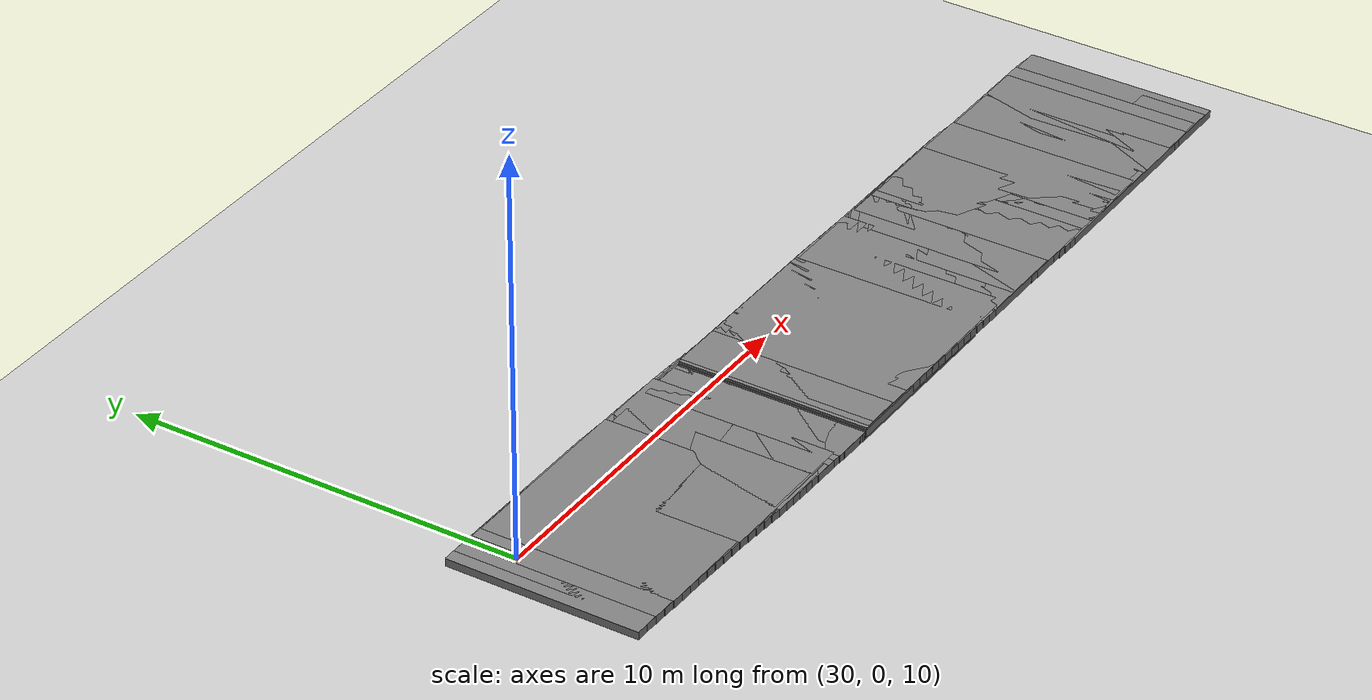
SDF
<sdf version="1.6">
 <world name="default">
  <include><uri>model://sun</uri></include>
  <include><uri>model://ground_plane</uri></include>
  <model name="road_segment_567">
   <static>true</static>
   <link name="link">
    <visual name="visual">
     <geometry><box><size>5.0 5.0 0.2</size></box></geometry>
     <material><ambient>0.5 0.5 0.5 1</ambient><diffuse>0.5 0.5 0.5 1</diffuse></material>
     <pose>54.498414594915474 0.13177249325932455 7.851056789716186 0 0 0</pose>
    </visual>
    <collision name="collision">
     <geometry><box><size>5.0 5.0 0.2</size></box></geometry>
     <pose>54.498414594915474 0.13177249325932455 7.851056789716186 0 0 0</pose>
    </collision>
   </link>
  </model>
  <model name="road_segment_568">
   <static>true</static>
   <link name="link">
    <visual name="visual">
     <geometry><box><size>5.0 5.0 0.2</size></box></geometry>
     <material><ambient>0.5 0.5 0.5 1</ambient><diffuse>0.5 0.5 0.5 1</diffuse></material>
     <pose>54.25348099810866 0.14872926371178607 7.851056789716186 0 0 0</pose>
    </visual>
    <collision name="collision">
     <geometry><box><size>5.0 5.0 0.2</size></box></geometry>
     <pose>54.25348099810866 0.14872926371178607 7.851056789716186 0 0 0</pose>
    </collision>
   </link>
  </model>
  <model name="road_segment_569">
   <static>true</static>
   <link name="link">
    <visual name="visual">
     <geometry><box><size>5.0 5.0 0.2</size></box></geometry>
     <material><ambient>0.5 0.5 0.5 1</ambient><diffuse>0.5 0.5 0.5 1</diffuse></material>
     <pose>54.00567529065241 0.17018059982385353 7.851056789716186 0 0 0</pose>
    </visual>
    <collision name="collision">
     <geometry><box><size>5.0 5.0 0.2</size></box></geometry>
     <pose>54.00567529065241 0.17018059982385353 7.851056789716186 0 0 0</pose>
    </collision>
   </link>
  </model>
  <model name="road_segment_570">
   <static>true</static>
   <link name="link">
    <visual name="visual">
     <geometry><box><size>5.0 5.0 0.2</size></box></geometry>
     <material><ambient>0.5 0.5 0.5 1</ambient><diffuse>0.5 0.5 0.5 1</diffuse></material>
     <pose>53.761545884847024 0.17590095611822743 7.851056789716186 0 0 0</pose>
    </visual>
    <collision name="collision">
     <geometry><box><size>5.0 5.0 0.2</size></box></geometry>
     <pose>53.761545884847024 0.17590095611822743 7.851056789716186 0 0 0</pose>
    </collision>
   </link>
  </model>
  <model name="road_segment_571">
   <static>true</static>
   <link name="link">
    <visual name="visual">
     <geometry><box><size>5.0 5.0 0.2</size></box></geometry>
     <material><ambient>0.5 0.5 0.5 1</ambient><diffuse>0.5 0.5 0.5 1</diffuse></material>
     <pose>53.525573273295805 0.16609463103645505 7.851056789716186 0 0 0</pose>
    </visual>
    <collision name="collision">
     <geometry><box><size>5.0 5.0 0.2</size></box></geometry>
     <pose>53.525573273295805 0.16609463103645505 7.851056789716186 0 0 0</pose>
    </collision>
   </link>
  </model>
  <model name="road_segment_572">
   <static>true</static>
   <link name="link">
    <visual name="visual">
     <geometry><box><size>5.0 5.0 0.2</size></box></geometry>
     <material><ambient>0.5 0.5 0.5 1</ambient><diffuse>0.5 0.5 0.5 1</diffuse></material>
     <pose>53.301778410924285 0.15179374029870585 7.851056789716186 0 0 0</pose>
    </visual>
    <collision name="collision">
     <geometry><box><size>5.0 5.0 0.2</size></box></geometry>
     <pose>53.301778410924285 0.15179374029870585 7.851056789716186 0 0 0</pose>
    </collision>
   </link>
  </model>
  <model name="road_segment_573">
   <static>true</static>
   <link name="link">
    <visual name="visual">
     <geometry><box><size>5.0 5.0 0.2</size></box></geometry>
     <material><ambient>0.5 0.5 0.5 1</ambient><diffuse>0.5 0.5 0.5 1</diffuse></material>
     <pose>53.08303846330227 0.1374928495609566 7.851056789716186 0 0 0</pose>
    </visual>
    <collision name="collision">
     <geometry><box><size>5.0 5.0 0.2</size></box></geometry>
     <pose>53.08303846330227 0.1374928495609566 7.851056789716186 0 0 0</pose>
    </collision>
   </link>
  </model>
  <model name="road_segment_574">
   <static>true</static>
   <link name="link">
    <visual name="visual">
     <geometry><box><size>5.0 5.0 0.2</size></box></geometry>
     <material><ambient>0.5 0.5 0.5 1</ambient><diffuse>0.5 0.5 0.5 1</diffuse></material>
     <pose>52.86383897798616 0.12911661355187046 7.851056789716186 0 0 0</pose>
    </visual>
    <collision name="collision">
     <geometry><box><size>5.0 5.0 0.2</size></box></geometry>
     <pose>52.86383897798616 0.12911661355187046 7.851056789716186 0 0 0</pose>
    </collision>
   </link>
  </model>
  <model name="road_segment_575">
   <static>true</static>
   <link name="link">
    <visual name="visual">
     <geometry><box><size>5.0 5.0 0.2</size></box></geometry>
     <material><ambient>0.5 0.5 0.5 1</ambient><diffuse>0.5 0.5 0.5 1</diffuse></material>
     <pose>52.64360553284605 0.12891231511032308 7.851056789716186 0 0 0</pose>
    </visual>
    <collision name="collision">
     <geometry><box><size>5.0 5.0 0.2</size></box></geometry>
     <pose>52.64360553284605 0.12891231511032308 7.851056789716186 0 0 0</pose>
    </collision>
   </link>
  </model>
  <model name="road_segment_576">
   <static>true</static>
   <link name="link">
    <visual name="visual">
     <geometry><box><size>5.0 5.0 0.2</size></box></geometry>
     <material><ambient>0.5 0.5 0.5 1</ambient><diffuse>0.5 0.5 0.5 1</diffuse></material>
     <pose>52.41808740408487 0.12993380730717272 7.851056789716186 0 0 0</pose>
    </visual>
    <collision name="collision">
     <geometry><box><size>5.0 5.0 0.2</size></box></geometry>
     <pose>52.41808740408487 0.12993380730717272 7.851056789716186 0 0 0</pose>
    </collision>
   </link>
  </model>
  <model name="road_segment_577">
   <static>true</static>
   <link name="link">
    <visual name="visual">
     <geometry><box><size>5.0 5.0 0.2</size></box></geometry>
     <material><ambient>0.5 0.5 0.5 1</ambient><diffuse>0.5 0.5 0.5 1</diffuse></material>
     <pose>52.18475713432786 0.13422407452886037 7.851056789716186 0 0 0</pose>
    </visual>
    <collision name="collision">
     <geometry><box><size>5.0 5.0 0.2</size></box></geometry>
     <pose>52.18475713432786 0.13422407452886037 7.851056789716186 0 0 0</pose>
    </collision>
   </link>
  </model>
  <model name="road_segment_578">
   <static>true</static>
   <link name="link">
    <visual name="visual">
     <geometry><box><size>5.0 5.0 0.2</size></box></geometry>
     <material><ambient>0.5 0.5 0.5 1</ambient><diffuse>0.5 0.5 0.5 1</diffuse></material>
     <pose>51.944074261285465 0.14975075590500658 7.851056789716186 0 0 0</pose>
    </visual>
    <collision name="collision">
     <geometry><box><size>5.0 5.0 0.2</size></box></geometry>
     <pose>51.944074261285465 0.14975075590500658 7.851056789716186 0 0 0</pose>
    </collision>
   </link>
  </model>
  <model name="road_segment_579">
   <static>true</static>
   <link name="link">
    <visual name="visual">
     <geometry><box><size>5.0 5.0 0.2</size></box></geometry>
     <material><ambient>0.5 0.5 0.5 1</ambient><diffuse>0.5 0.5 0.5 1</diffuse></material>
     <pose>51.6968429759591 0.1669118247953864 7.851056789716186 0 0 0</pose>
    </visual>
    <collision name="collision">
     <geometry><box><size>5.0 5.0 0.2</size></box></geometry>
     <pose>51.6968429759591 0.1669118247953864 7.851056789716186 0 0 0</pose>
    </collision>
   </link>
  </model>
  <model name="road_segment_580">
   <static>true</static>
   <link name="link">
    <visual name="visual">
     <geometry><box><size>5.0 5.0 0.2</size></box></geometry>
     <material><ambient>0.5 0.5 0.5 1</ambient><diffuse>0.5 0.5 0.5 1</diffuse></material>
     <pose>51.44156978079802 0.17630955299769308 7.851056789716186 0 0 0</pose>
    </visual>
    <collision name="collision">
     <geometry><box><size>5.0 5.0 0.2</size></box></geometry>
     <pose>51.44156978079802 0.17630955299769308 7.851056789716186 0 0 0</pose>
    </collision>
   </link>
  </model>
  <model name="road_segment_581">
   <static>true</static>
   <link name="link">
    <visual name="visual">
     <geometry><box><size>5.0 5.0 0.2</size></box></geometry>
     <material><ambient>0.5 0.5 0.5 1</ambient><diffuse>0.5 0.5 0.5 1</diffuse></material>
     <pose>51.17802490694699 0.17814823894984494 7.851056789716186 0 0 0</pose>
    </visual>
    <collision name="collision">
     <geometry><box><size>5.0 5.0 0.2</size></box></geometry>
     <pose>51.17802490694699 0.17814823894984494 7.851056789716186 0 0 0</pose>
    </collision>
   </link>
  </model>
  <model name="road_segment_582">
   <static>true</static>
   <link name="link">
    <visual name="visual">
     <geometry><box><size>5.0 5.0 0.2</size></box></geometry>
     <material><ambient>0.5 0.5 0.5 1</ambient><diffuse>0.5 0.5 0.5 1</diffuse></material>
     <pose>50.90976977162111 0.17406227016607556 7.851056789716186 0 0 0</pose>
    </visual>
    <collision name="collision">
     <geometry><box><size>5.0 5.0 0.2</size></box></geometry>
     <pose>50.90976977162111 0.17406227016607556 7.851056789716186 0 0 0</pose>
    </collision>
   </link>
  </model>
  <model name="road_segment_583">
   <static>true</static>
   <link name="link">
    <visual name="visual">
     <geometry><box><size>5.0 5.0 0.2</size></box></geometry>
     <material><ambient>0.5 0.5 0.5 1</ambient><diffuse>0.5 0.5 0.5 1</diffuse></material>
     <pose>50.638068103499585 0.1777396420703793 7.851056789716186 0 0 0</pose>
    </visual>
    <collision name="collision">
     <geometry><box><size>5.0 5.0 0.2</size></box></geometry>
     <pose>50.638068103499585 0.1777396420703793 7.851056789716186 0 0 0</pose>
    </collision>
   </link>
  </model>
  <model name="road_segment_584">
   <static>true</static>
   <link name="link">
    <visual name="visual">
     <geometry><box><size>5.0 5.0 0.2</size></box></geometry>
     <material><ambient>0.5 0.5 0.5 1</ambient><diffuse>0.5 0.5 0.5 1</diffuse></material>
     <pose>50.363034787018194 0.19755659066821318 7.851056789716186 0 0 0</pose>
    </visual>
    <collision name="collision">
     <geometry><box><size>5.0 5.0 0.2</size></box></geometry>
     <pose>50.363034787018194 0.19755659066821318 7.851056789716186 0 0 0</pose>
    </collision>
   </link>
  </model>
  <model name="road_segment_585">
   <static>true</static>
   <link name="link">
    <visual name="visual">
     <geometry><box><size>5.0 5.0 0.2</size></box></geometry>
     <material><ambient>0.5 0.5 0.5 1</ambient><diffuse>0.5 0.5 0.5 1</diffuse></material>
     <pose>50.084325168885954 0.22186810492928213 7.851056789716186 0 0 0</pose>
    </visual>
    <collision name="collision">
     <geometry><box><size>5.0 5.0 0.2</size></box></geometry>
     <pose>50.084325168885954 0.22186810492928213 7.851056789716186 0 0 0</pose>
    </collision>
   </link>
  </model>
  <model name="road_segment_586">
   <static>true</static>
   <link name="link">
    <visual name="visual">
     <geometry><box><size>5.0 5.0 0.2</size></box></geometry>
     <material><ambient>0.5 0.5 0.5 1</ambient><diffuse>0.5 0.5 0.5 1</diffuse></material>
     <pose>49.80274344010428 0.23371741440112462 7.851056789716186 0 0 0</pose>
    </visual>
    <collision name="collision">
     <geometry><box><size>5.0 5.0 0.2</size></box></geometry>
     <pose>49.80274344010428 0.23371741440112462 7.851056789716186 0 0 0</pose>
    </collision>
   </link>
  </model>
  <model name="road_segment_587">
   <static>true</static>
   <link name="link">
    <visual name="visual">
     <geometry><box><size>5.0 5.0 0.2</size></box></geometry>
     <material><ambient>0.5 0.5 0.5 1</ambient><diffuse>0.5 0.5 0.5 1</diffuse></material>
     <pose>49.51920867607773 0.22064231429451422 7.851056789716186 0 0 0</pose>
    </visual>
    <collision name="collision">
     <geometry><box><size>5.0 5.0 0.2</size></box></geometry>
     <pose>49.51920867607773 0.22064231429451422 7.851056789716186 0 0 0</pose>
    </collision>
   </link>
  </model>
  <model name="road_segment_588">
   <static>true</static>
   <link name="link">
    <visual name="visual">
     <geometry><box><size>5.0 5.0 0.2</size></box></geometry>
     <material><ambient>0.5 0.5 0.5 1</ambient><diffuse>0.5 0.5 0.5 1</diffuse></material>
     <pose>49.23452506777509 0.19510500939867736 7.851056789716186 0 0 0</pose>
    </visual>
    <collision name="collision">
     <geometry><box><size>5.0 5.0 0.2</size></box></geometry>
     <pose>49.23452506777509 0.19510500939867736 7.851056789716186 0 0 0</pose>
    </collision>
   </link>
  </model>
  <model name="road_segment_589">
   <static>true</static>
   <link name="link">
    <visual name="visual">
     <geometry><box><size>5.0 5.0 0.2</size></box></geometry>
     <material><ambient>0.5 0.5 0.5 1</ambient><diffuse>0.5 0.5 0.5 1</diffuse></material>
     <pose>48.94915215292312 0.18345999836838223 7.851056789716186 0 0 0</pose>
    </visual>
    <collision name="collision">
     <geometry><box><size>5.0 5.0 0.2</size></box></geometry>
     <pose>48.94915215292312 0.18345999836838223 7.851056789716186 0 0 0</pose>
    </collision>
   </link>
  </model>
  <model name="road_segment_590">
   <static>true</static>
   <link name="link">
    <visual name="visual">
     <geometry><box><size>5.0 5.0 0.2</size></box></geometry>
     <material><ambient>0.5 0.5 0.5 1</ambient><diffuse>0.5 0.5 0.5 1</diffuse></material>
     <pose>48.6644685446368 0.186524474955302 7.851056789716186 0 0 0</pose>
    </visual>
    <collision name="collision">
     <geometry><box><size>5.0 5.0 0.2</size></box></geometry>
     <pose>48.6644685446368 0.186524474955302 7.851056789716186 0 0 0</pose>
    </collision>
   </link>
  </model>
  <model name="road_segment_591">
   <static>true</static>
   <link name="link">
    <visual name="visual">
     <geometry><box><size>5.0 5.0 0.2</size></box></geometry>
     <material><ambient>0.5 0.5 0.5 1</ambient><diffuse>0.5 0.5 0.5 1</diffuse></material>
     <pose>48.38185285603113 0.19367492032599115 7.851056789716186 0 0 0</pose>
    </visual>
    <collision name="collision">
     <geometry><box><size>5.0 5.0 0.2</size></box></geometry>
     <pose>48.38185285603113 0.19367492032599115 7.851056789716186 0 0 0</pose>
    </collision>
   </link>
  </model>
  <model name="road_segment_592">
   <static>true</static>
   <link name="link">
    <visual name="visual">
     <geometry><box><size>5.0 5.0 0.2</size></box></geometry>
     <material><ambient>0.5 0.5 0.5 1</ambient><diffuse>0.5 0.5 0.5 1</diffuse></material>
     <pose>48.09946693626435 0.20041676882084372 7.851056789716186 0 0 0</pose>
    </visual>
    <collision name="collision">
     <geometry><box><size>5.0 5.0 0.2</size></box></geometry>
     <pose>48.09946693626435 0.20041676882084372 7.851056789716186 0 0 0</pose>
    </collision>
   </link>
  </model>
  <model name="road_segment_593">
   <static>true</static>
   <link name="link">
    <visual name="visual">
     <geometry><box><size>5.0 5.0 0.2</size></box></geometry>
     <material><ambient>0.5 0.5 0.5 1</ambient><diffuse>0.5 0.5 0.5 1</diffuse></material>
     <pose>47.8167363632229 0.20797581106736948 7.851056789716186 0 0 0</pose>
    </visual>
    <collision name="collision">
     <geometry><box><size>5.0 5.0 0.2</size></box></geometry>
     <pose>47.8167363632229 0.20797581106736948 7.851056789716186 0 0 0</pose>
    </collision>
   </link>
  </model>
  <model name="road_segment_594">
   <static>true</static>
   <link name="link">
    <visual name="visual">
     <geometry><box><size>5.0 5.0 0.2</size></box></geometry>
     <material><ambient>0.5 0.5 0.5 1</ambient><diffuse>0.5 0.5 0.5 1</diffuse></material>
     <pose>47.53480998116656 0.21410476424120903 7.851056789716186 0 0 0</pose>
    </visual>
    <collision name="collision">
     <geometry><box><size>5.0 5.0 0.2</size></box></geometry>
     <pose>47.53480998116656 0.21410476424120903 7.851056789716186 0 0 0</pose>
    </collision>
   </link>
  </model>
  <model name="road_segment_595">
   <static>true</static>
   <link name="link">
    <visual name="visual">
     <geometry><box><size>5.0 5.0 0.2</size></box></geometry>
     <material><ambient>0.5 0.5 0.5 1</ambient><diffuse>0.5 0.5 0.5 1</diffuse></material>
     <pose>47.25357290565956 0.21451336112067468 7.851056789716186 0 0 0</pose>
    </visual>
    <collision name="collision">
     <geometry><box><size>5.0 5.0 0.2</size></box></geometry>
     <pose>47.25357290565956 0.21451336112067468 7.851056789716186 0 0 0</pose>
    </collision>
   </link>
  </model>
  <model name="road_segment_596">
   <static>true</static>
   <link name="link">
    <visual name="visual">
     <geometry><box><size>5.0 5.0 0.2</size></box></geometry>
     <material><ambient>0.5 0.5 0.5 1</ambient><diffuse>0.5 0.5 0.5 1</diffuse></material>
     <pose>46.97084233261812 0.2153305548759769 7.851056789716186 0 0 0</pose>
    </visual>
    <collision name="collision">
     <geometry><box><size>5.0 5.0 0.2</size></box></geometry>
     <pose>46.97084233261812 0.2153305548759769 7.851056789716186 0 0 0</pose>
    </collision>
   </link>
  </model>
  <model name="road_segment_597">
   <static>true</static>
   <link name="link">
    <visual name="visual">
     <geometry><box><size>5.0 5.0 0.2</size></box></geometry>
     <material><ambient>0.5 0.5 0.5 1</ambient><diffuse>0.5 0.5 0.5 1</diffuse></material>
     <pose>46.68719268415579 0.22248100024666606 7.851056789716186 0 0 0</pose>
    </visual>
    <collision name="collision">
     <geometry><box><size>5.0 5.0 0.2</size></box></geometry>
     <pose>46.68719268415579 0.22248100024666606 7.851056789716186 0 0 0</pose>
    </collision>
   </link>
  </model>
  <model name="road_segment_598">
   <static>true</static>
   <link name="link">
    <visual name="visual">
     <geometry><box><size>5.0 5.0 0.2</size></box></geometry>
     <material><ambient>0.5 0.5 0.5 1</ambient><diffuse>0.5 0.5 0.5 1</diffuse></material>
     <pose>46.40285372914414 0.22963144561735524 7.851056789716186 0 0 0</pose>
    </visual>
    <collision name="collision">
     <geometry><box><size>5.0 5.0 0.2</size></box></geometry>
     <pose>46.40285372914414 0.22963144561735524 7.851056789716186 0 0 0</pose>
    </collision>
   </link>
  </model>
  <model name="road_segment_599">
   <static>true</static>
   <link name="link">
    <visual name="visual">
     <geometry><box><size>5.0 5.0 0.2</size></box></geometry>
     <material><ambient>0.5 0.5 0.5 1</ambient><diffuse>0.5 0.5 0.5 1</diffuse></material>
     <pose>46.118170120857826 0.23310451908374066 7.851056789716186 0 0 0</pose>
    </visual>
    <collision name="collision">
     <geometry><box><size>5.0 5.0 0.2</size></box></geometry>
     <pose>46.118170120857826 0.23310451908374066 7.851056789716186 0 0 0</pose>
    </collision>
   </link>
  </model>
  <model name="road_segment_600">
   <static>true</static>
   <link name="link">
    <visual name="visual">
     <geometry><box><size>5.0 5.0 0.2</size></box></geometry>
     <material><ambient>0.5 0.5 0.5 1</ambient><diffuse>0.5 0.5 0.5 1</diffuse></material>
     <pose>45.833946050265624 0.23412601128059027 7.851056789716186 0 0 0</pose>
    </visual>
    <collision name="collision">
     <geometry><box><size>5.0 5.0 0.2</size></box></geometry>
     <pose>45.833946050265624 0.23412601128059027 7.851056789716186 0 0 0</pose>
    </collision>
   </link>
  </model>
  <model name="road_segment_601">
   <static>true</static>
   <link name="link">
    <visual name="visual">
     <geometry><box><size>5.0 5.0 0.2</size></box></geometry>
     <material><ambient>0.5 0.5 0.5 1</ambient><diffuse>0.5 0.5 0.5 1</diffuse></material>
     <pose>45.54960709525396 0.23473890659797422 7.851056789716186 0 0 0</pose>
    </visual>
    <collision name="collision">
     <geometry><box><size>5.0 5.0 0.2</size></box></geometry>
     <pose>45.54960709525396 0.23473890659797422 7.851056789716186 0 0 0</pose>
    </collision>
   </link>
  </model>
  <model name="road_segment_602">
   <static>true</static>
   <link name="link">
    <visual name="visual">
     <geometry><box><size>5.0 5.0 0.2</size></box></geometry>
     <material><ambient>0.5 0.5 0.5 1</ambient><diffuse>0.5 0.5 0.5 1</diffuse></material>
     <pose>45.26664675335731 0.23964206913704586 7.851056789716186 0 0 0</pose>
    </visual>
    <collision name="collision">
     <geometry><box><size>5.0 5.0 0.2</size></box></geometry>
     <pose>45.26664675335731 0.23964206913704586 7.851056789716186 0 0 0</pose>
    </collision>
   </link>
  </model>
  <model name="road_segment_603">
   <static>true</static>
   <link name="link">
    <visual name="visual">
     <geometry><box><size>5.0 5.0 0.2</size></box></geometry>
     <material><ambient>0.5 0.5 0.5 1</ambient><diffuse>0.5 0.5 0.5 1</diffuse></material>
     <pose>44.982997104911306 0.2469968129456533 7.851056789716186 0 0 0</pose>
    </visual>
    <collision name="collision">
     <geometry><box><size>5.0 5.0 0.2</size></box></geometry>
     <pose>44.982997104911306 0.2469968129456533 7.851056789716186 0 0 0</pose>
    </collision>
   </link>
  </model>
  <model name="road_segment_604">
   <static>true</static>
   <link name="link">
    <visual name="visual">
     <geometry><box><size>5.0 5.0 0.2</size></box></geometry>
     <material><ambient>0.5 0.5 0.5 1</ambient><diffuse>0.5 0.5 0.5 1</diffuse></material>
     <pose>44.69498184826513 0.25128708016734097 7.851056789716186 0 0 0</pose>
    </visual>
    <collision name="collision">
     <geometry><box><size>5.0 5.0 0.2</size></box></geometry>
     <pose>44.69498184826513 0.25128708016734097 7.851056789716186 0 0 0</pose>
    </collision>
   </link>
  </model>
  <model name="road_segment_605">
   <static>true</static>
   <link name="link">
    <visual name="visual">
     <geometry><box><size>5.0 5.0 0.2</size></box></geometry>
     <material><ambient>0.5 0.5 0.5 1</ambient><diffuse>0.5 0.5 0.5 1</diffuse></material>
     <pose>44.40179679243364 0.2537386614368768 7.851056789716186 0 0 0</pose>
    </visual>
    <collision name="collision">
     <geometry><box><size>5.0 5.0 0.2</size></box></geometry>
     <pose>44.40179679243364 0.2537386614368768 7.851056789716186 0 0 0</pose>
    </collision>
   </link>
  </model>
  <model name="road_segment_606">
   <static>true</static>
   <link name="link">
    <visual name="visual">
     <geometry><box><size>5.0 5.0 0.2</size></box></geometry>
     <material><ambient>0.5 0.5 0.5 1</ambient><diffuse>0.5 0.5 0.5 1</diffuse></material>
     <pose>44.10183355544666 0.2594590177348797 7.851056789716186 0 0 0</pose>
    </visual>
    <collision name="collision">
     <geometry><box><size>5.0 5.0 0.2</size></box></geometry>
     <pose>44.10183355544666 0.2594590177348797 7.851056789716186 0 0 0</pose>
    </collision>
   </link>
  </model>
  <model name="road_segment_607">
   <static>true</static>
   <link name="link">
    <visual name="visual">
     <geometry><box><size>5.0 5.0 0.2</size></box></geometry>
     <material><ambient>0.5 0.5 0.5 1</ambient><diffuse>0.5 0.5 0.5 1</diffuse></material>
     <pose>43.79566655943405 0.2659965677881849 7.851056789716186 0 0 0</pose>
    </visual>
    <collision name="collision">
     <geometry><box><size>5.0 5.0 0.2</size></box></geometry>
     <pose>43.79566655943405 0.2659965677881849 7.851056789716186 0 0 0</pose>
    </collision>
   </link>
  </model>
  <model name="road_segment_608">
   <static>true</static>
   <link name="link">
    <visual name="visual">
     <geometry><box><size>5.0 5.0 0.2</size></box></geometry>
     <material><ambient>0.5 0.5 0.5 1</ambient><diffuse>0.5 0.5 0.5 1</diffuse></material>
     <pose>43.512361564262726 0.2639535833981148 7.851056789716186 0 0 0</pose>
    </visual>
    <collision name="collision">
     <geometry><box><size>5.0 5.0 0.2</size></box></geometry>
     <pose>43.512361564262726 0.2639535833981148 7.851056789716186 0 0 0</pose>
    </collision>
   </link>
  </model>
  <model name="road_segment_609">
   <static>true</static>
   <link name="link">
    <visual name="visual">
     <geometry><box><size>5.0 5.0 0.2</size></box></geometry>
     <material><ambient>0.5 0.5 0.5 1</ambient><diffuse>0.5 0.5 0.5 1</diffuse></material>
     <pose>43.30625890354718 0.2516956770504357 7.851056789716186 0 0 0</pose>
    </visual>
    <collision name="collision">
     <geometry><box><size>5.0 5.0 0.2</size></box></geometry>
     <pose>43.30625890354718 0.2516956770504357 7.851056789716186 0 0 0</pose>
    </collision>
   </link>
  </model>
  <model name="road_segment_610">
   <static>true</static>
   <link name="link">
    <visual name="visual">
     <geometry><box><size>5.0 5.0 0.2</size></box></geometry>
     <material><ambient>0.5 0.5 0.5 1</ambient><diffuse>0.5 0.5 0.5 1</diffuse></material>
     <pose>43.20435641745735 0.24250224728604736 7.851056789716186 0 0 0</pose>
    </visual>
    <collision name="collision">
     <geometry><box><size>5.0 5.0 0.2</size></box></geometry>
     <pose>43.20435641745735 0.24250224728604736 7.851056789716186 0 0 0</pose>
    </collision>
   </link>
  </model>
  <model name="road_segment_611">
   <static>true</static>
   <link name="link">
    <visual name="visual">
     <geometry><box><size>5.0 5.0 0.2</size></box></geometry>
     <material><ambient>0.5 0.5 0.5 1</ambient><diffuse>0.5 0.5 0.5 1</diffuse></material>
     <pose>43.167018978916836 0.24168505352711603 7.802219203753588 0 0 0</pose>
    </visual>
    <collision name="collision">
     <geometry><box><size>5.0 5.0 0.2</size></box></geometry>
     <pose>43.167018978916836 0.24168505352711603 7.802219203753588 0 0 0</pose>
    </collision>
   </link>
  </model>
  <model name="road_segment_612">
   <static>true</static>
   <link name="link">
    <visual name="visual">
     <geometry><box><size>5.0 5.0 0.2</size></box></geometry>
     <material><ambient>0.5 0.5 0.5 1</ambient><diffuse>0.5 0.5 0.5 1</diffuse></material>
     <pose>43.121065208395386 0.24556672387296713 7.753381617790991 0 0 0</pose>
    </visual>
    <collision name="collision">
     <geometry><box><size>5.0 5.0 0.2</size></box></geometry>
     <pose>43.121065208395386 0.24556672387296713 7.753381617790991 0 0 0</pose>
    </collision>
   </link>
  </model>
  <model name="road_segment_613">
   <static>true</static>
   <link name="link">
    <visual name="visual">
     <geometry><box><size>5.0 5.0 0.2</size></box></geometry>
     <material><ambient>0.5 0.5 0.5 1</ambient><diffuse>0.5 0.5 0.5 1</diffuse></material>
     <pose>43.03800376820497 0.24781400670458464 7.753381617790991 0 0 0</pose>
    </visual>
    <collision name="collision">
     <geometry><box><size>5.0 5.0 0.2</size></box></geometry>
     <pose>43.03800376820497 0.24781400670458464 7.753381617790991 0 0 0</pose>
    </collision>
   </link>
  </model>
  <model name="road_segment_614">
   <static>true</static>
   <link name="link">
    <visual name="visual">
     <geometry><box><size>5.0 5.0 0.2</size></box></geometry>
     <material><ambient>0.5 0.5 0.5 1</ambient><diffuse>0.5 0.5 0.5 1</diffuse></material>
     <pose>42.92162584439957 0.25292146768157453 7.753381617790991 0 0 0</pose>
    </visual>
    <collision name="collision">
     <geometry><box><size>5.0 5.0 0.2</size></box></geometry>
     <pose>42.92162584439957 0.25292146768157453 7.753381617790991 0 0 0</pose>
    </collision>
   </link>
  </model>
  <model name="road_segment_615">
   <static>true</static>
   <link name="link">
    <visual name="visual">
     <geometry><box><size>5.0 5.0 0.2</size></box></geometry>
     <material><ambient>0.5 0.5 0.5 1</ambient><diffuse>0.5 0.5 0.5 1</diffuse></material>
     <pose>42.77721612058393 0.26334068807710176 7.753381617790991 0 0 0</pose>
    </visual>
    <collision name="collision">
     <geometry><box><size>5.0 5.0 0.2</size></box></geometry>
     <pose>42.77721612058393 0.26334068807710176 7.753381617790991 0 0 0</pose>
    </collision>
   </link>
  </model>
  <model name="road_segment_616">
   <static>true</static>
   <link name="link">
    <visual name="visual">
     <geometry><box><size>5.0 5.0 0.2</size></box></geometry>
     <material><ambient>0.5 0.5 0.5 1</ambient><diffuse>0.5 0.5 0.5 1</diffuse></material>
     <pose>42.614884426273406 0.26456647871186967 7.753381617790991 0 0 0</pose>
    </visual>
    <collision name="collision">
     <geometry><box><size>5.0 5.0 0.2</size></box></geometry>
     <pose>42.614884426273406 0.26456647871186967 7.753381617790991 0 0 0</pose>
    </collision>
   </link>
  </model>
  <model name="road_segment_617">
   <static>true</static>
   <link name="link">
    <visual name="visual">
     <geometry><box><size>5.0 5.0 0.2</size></box></geometry>
     <material><ambient>0.5 0.5 0.5 1</ambient><diffuse>0.5 0.5 0.5 1</diffuse></material>
     <pose>42.438996369651875 0.25741603334480956 7.753381617790991 0 0 0</pose>
    </visual>
    <collision name="collision">
     <geometry><box><size>5.0 5.0 0.2</size></box></geometry>
     <pose>42.438996369651875 0.25741603334480956 7.753381617790991 0 0 0</pose>
    </collision>
   </link>
  </model>
  <model name="road_segment_618">
   <static>true</static>
   <link name="link">
    <visual name="visual">
     <geometry><box><size>5.0 5.0 0.2</size></box></geometry>
     <material><ambient>0.5 0.5 0.5 1</ambient><diffuse>0.5 0.5 0.5 1</diffuse></material>
     <pose>42.24966683515511 0.25619024271004165 7.753381617790991 0 0 0</pose>
    </visual>
    <collision name="collision">
     <geometry><box><size>5.0 5.0 0.2</size></box></geometry>
     <pose>42.24966683515511 0.25619024271004165 7.753381617790991 0 0 0</pose>
    </collision>
   </link>
  </model>
  <model name="road_segment_619">
   <static>true</static>
   <link name="link">
    <visual name="visual">
     <geometry><box><size>5.0 5.0 0.2</size></box></geometry>
     <material><ambient>0.5 0.5 0.5 1</ambient><diffuse>0.5 0.5 0.5 1</diffuse></material>
     <pose>42.04907862689953 0.26334068807710176 7.753381617790991 0 0 0</pose>
    </visual>
    <collision name="collision">
     <geometry><box><size>5.0 5.0 0.2</size></box></geometry>
     <pose>42.04907862689953 0.26334068807710176 7.753381617790991 0 0 0</pose>
    </collision>
   </link>
  </model>
  <model name="road_segment_620">
   <static>true</static>
   <link name="link">
    <visual name="visual">
     <geometry><box><size>5.0 5.0 0.2</size></box></geometry>
     <material><ambient>0.5 0.5 0.5 1</ambient><diffuse>0.5 0.5 0.5 1</diffuse></material>
     <pose>41.839414548968904 0.274985699111026 7.753381617790991 0 0 0</pose>
    </visual>
    <collision name="collision">
     <geometry><box><size>5.0 5.0 0.2</size></box></geometry>
     <pose>41.839414548968904 0.274985699111026 7.753381617790991 0 0 0</pose>
    </collision>
   </link>
  </model>
  <model name="road_segment_621">
   <static>true</static>
   <link name="link">
    <visual name="visual">
     <geometry><box><size>5.0 5.0 0.2</size></box></geometry>
     <material><ambient>0.5 0.5 0.5 1</ambient><diffuse>0.5 0.5 0.5 1</diffuse></material>
     <pose>41.619410872667686 0.28172754760587854 7.753381617790991 0 0 0</pose>
    </visual>
    <collision name="collision">
     <geometry><box><size>5.0 5.0 0.2</size></box></geometry>
     <pose>41.619410872667686 0.28172754760587854 7.753381617790991 0 0 0</pose>
    </collision>
   </link>
  </model>
  <model name="road_segment_622">
   <static>true</static>
   <link name="link">
    <visual name="visual">
     <geometry><box><size>5.0 5.0 0.2</size></box></geometry>
     <material><ambient>0.5 0.5 0.5 1</ambient><diffuse>0.5 0.5 0.5 1</diffuse></material>
     <pose>41.39067597996608 0.27845877257741136 7.753381617790991 0 0 0</pose>
    </visual>
    <collision name="collision">
     <geometry><box><size>5.0 5.0 0.2</size></box></geometry>
     <pose>41.39067597996608 0.27845877257741136 7.753381617790991 0 0 0</pose>
    </collision>
   </link>
  </model>
  <model name="road_segment_623">
   <static>true</static>
   <link name="link">
    <visual name="visual">
     <geometry><box><size>5.0 5.0 0.2</size></box></geometry>
     <material><ambient>0.5 0.5 0.5 1</ambient><diffuse>0.5 0.5 0.5 1</diffuse></material>
     <pose>41.15355452415509 0.27764157881848006 7.753381617790991 0 0 0</pose>
    </visual>
    <collision name="collision">
     <geometry><box><size>5.0 5.0 0.2</size></box></geometry>
     <pose>41.15355452415509 0.27764157881848006 7.753381617790991 0 0 0</pose>
    </collision>
   </link>
  </model>
  <model name="road_segment_624">
   <static>true</static>
   <link name="link">
    <visual name="visual">
     <geometry><box><size>5.0 5.0 0.2</size></box></geometry>
     <material><ambient>0.5 0.5 0.5 1</ambient><diffuse>0.5 0.5 0.5 1</diffuse></material>
     <pose>40.907586967524274 0.2835662335544013 7.753381617790991 0 0 0</pose>
    </visual>
    <collision name="collision">
     <geometry><box><size>5.0 5.0 0.2</size></box></geometry>
     <pose>40.907586967524274 0.2835662335544013 7.753381617790991 0 0 0</pose>
    </collision>
   </link>
  </model>
  <model name="road_segment_625">
   <static>true</static>
   <link name="link">
    <visual name="visual">
     <geometry><box><size>5.0 5.0 0.2</size></box></geometry>
     <material><ambient>0.5 0.5 0.5 1</ambient><diffuse>0.5 0.5 0.5 1</diffuse></material>
     <pose>40.65541565186784 0.2862221132654845 7.753381617790991 0 0 0</pose>
    </visual>
    <collision name="collision">
     <geometry><box><size>5.0 5.0 0.2</size></box></geometry>
     <pose>40.65541565186784 0.2862221132654845 7.753381617790991 0 0 0</pose>
    </collision>
   </link>
  </model>
  <model name="road_segment_626">
   <static>true</static>
   <link name="link">
    <visual name="visual">
     <geometry><box><size>5.0 5.0 0.2</size></box></geometry>
     <material><ambient>0.5 0.5 0.5 1</ambient><diffuse>0.5 0.5 0.5 1</diffuse></material>
     <pose>40.39841919030078 0.2878565007797181 7.753381617790991 0 0 0</pose>
    </visual>
    <collision name="collision">
     <geometry><box><size>5.0 5.0 0.2</size></box></geometry>
     <pose>40.39841919030078 0.2878565007797181 7.753381617790991 0 0 0</pose>
    </collision>
   </link>
  </model>
  <model name="road_segment_627">
   <static>true</static>
   <link name="link">
    <visual name="visual">
     <geometry><box><size>5.0 5.0 0.2</size></box></geometry>
     <material><ambient>0.5 0.5 0.5 1</ambient><diffuse>0.5 0.5 0.5 1</diffuse></material>
     <pose>40.133610587754205 0.2958241399057095 7.753381617790991 0 0 0</pose>
    </visual>
    <collision name="collision">
     <geometry><box><size>5.0 5.0 0.2</size></box></geometry>
     <pose>40.133610587754205 0.2958241399057095 7.753381617790991 0 0 0</pose>
    </collision>
   </link>
  </model>
  <model name="road_segment_628">
   <static>true</static>
   <link name="link">
    <visual name="visual">
     <geometry><box><size>5.0 5.0 0.2</size></box></geometry>
     <material><ambient>0.5 0.5 0.5 1</ambient><diffuse>0.5 0.5 0.5 1</diffuse></material>
     <pose>39.85915169340271 0.30522186810801616 7.753381617790991 0 0 0</pose>
    </visual>
    <collision name="collision">
     <geometry><box><size>5.0 5.0 0.2</size></box></geometry>
     <pose>39.85915169340271 0.30522186810801616 7.753381617790991 0 0 0</pose>
    </collision>
   </link>
  </model>
  <model name="road_segment_629">
   <static>true</static>
   <link name="link">
    <visual name="visual">
     <geometry><box><size>5.0 5.0 0.2</size></box></geometry>
     <material><ambient>0.5 0.5 0.5 1</ambient><diffuse>0.5 0.5 0.5 1</diffuse></material>
     <pose>39.57699554249115 0.31564108850717243 7.753381617790991 0 0 0</pose>
    </visual>
    <collision name="collision">
     <geometry><box><size>5.0 5.0 0.2</size></box></geometry>
     <pose>39.57699554249115 0.31564108850717243 7.753381617790991 0 0 0</pose>
    </collision>
   </link>
  </model>
  <model name="road_segment_630">
   <static>true</static>
   <link name="link">
    <visual name="visual">
     <geometry><box><size>5.0 5.0 0.2</size></box></geometry>
     <material><ambient>0.5 0.5 0.5 1</ambient><diffuse>0.5 0.5 0.5 1</diffuse></material>
     <pose>39.28771655714942 0.33157636675915525 7.753381617790991 0 0 0</pose>
    </visual>
    <collision name="collision">
     <geometry><box><size>5.0 5.0 0.2</size></box></geometry>
     <pose>39.28771655714942 0.33157636675915525 7.753381617790991 0 0 0</pose>
    </collision>
   </link>
  </model>
  <model name="road_segment_631">
   <static>true</static>
   <link name="link">
    <visual name="visual">
     <geometry><box><size>5.0 5.0 0.2</size></box></geometry>
     <material><ambient>0.5 0.5 0.5 1</ambient><diffuse>0.5 0.5 0.5 1</diffuse></material>
     <pose>38.99142962179697 0.35159761379490745 7.753381617790991 0 0 0</pose>
    </visual>
    <collision name="collision">
     <geometry><box><size>5.0 5.0 0.2</size></box></geometry>
     <pose>38.99142962179697 0.35159761379490745 7.753381617790991 0 0 0</pose>
    </collision>
   </link>
  </model>
  <model name="road_segment_632">
   <static>true</static>
   <link name="link">
    <visual name="visual">
     <geometry><box><size>5.0 5.0 0.2</size></box></geometry>
     <material><ambient>0.5 0.5 0.5 1</ambient><diffuse>0.5 0.5 0.5 1</diffuse></material>
     <pose>38.68962823400088 0.371823159272207 7.753381617790991 0 0 0</pose>
    </visual>
    <collision name="collision">
     <geometry><box><size>5.0 5.0 0.2</size></box></geometry>
     <pose>38.68962823400088 0.371823159272207 7.753381617790991 0 0 0</pose>
    </collision>
   </link>
  </model>
  <model name="road_segment_633">
   <static>true</static>
   <link name="link">
    <visual name="visual">
     <geometry><box><size>5.0 5.0 0.2</size></box></geometry>
     <material><ambient>0.5 0.5 0.5 1</ambient><diffuse>0.5 0.5 0.5 1</diffuse></material>
     <pose>38.382082624889605 0.3916401078700409 7.753381617790991 0 0 0</pose>
    </visual>
    <collision name="collision">
     <geometry><box><size>5.0 5.0 0.2</size></box></geometry>
     <pose>38.382082624889605 0.3916401078700409 7.753381617790991 0 0 0</pose>
    </collision>
   </link>
  </model>
  <model name="road_segment_634">
   <static>true</static>
   <link name="link">
    <visual name="visual">
     <geometry><box><size>5.0 5.0 0.2</size></box></geometry>
     <material><ambient>0.5 0.5 0.5 1</ambient><diffuse>0.5 0.5 0.5 1</diffuse></material>
     <pose>38.06913744773782 0.4075753861256528 7.753381617790991 0 0 0</pose>
    </visual>
    <collision name="collision">
     <geometry><box><size>5.0 5.0 0.2</size></box></geometry>
     <pose>38.06913744773782 0.4075753861256528 7.753381617790991 0 0 0</pose>
    </collision>
   </link>
  </model>
  <model name="road_segment_635">
   <static>true</static>
   <link name="link">
    <visual name="visual">
     <geometry><box><size>5.0 5.0 0.2</size></box></geometry>
     <material><ambient>0.5 0.5 0.5 1</ambient><diffuse>0.5 0.5 0.5 1</diffuse></material>
     <pose>37.753779697630726 0.4184032034042748 7.753381617790991 0 0 0</pose>
    </visual>
    <collision name="collision">
     <geometry><box><size>5.0 5.0 0.2</size></box></geometry>
     <pose>37.753779697630726 0.4184032034042748 7.753381617790991 0 0 0</pose>
    </collision>
   </link>
  </model>
  <model name="road_segment_636">
   <static>true</static>
   <link name="link">
    <visual name="visual">
     <geometry><box><size>5.0 5.0 0.2</size></box></geometry>
     <material><ambient>0.5 0.5 0.5 1</ambient><diffuse>0.5 0.5 0.5 1</diffuse></material>
     <pose>37.43509029916376 0.428209528482418 7.753381617790991 0 0 0</pose>
    </visual>
    <collision name="collision">
     <geometry><box><size>5.0 5.0 0.2</size></box></geometry>
     <pose>37.43509029916376 0.428209528482418 7.753381617790991 0 0 0</pose>
    </collision>
   </link>
  </model>
  <model name="road_segment_637">
   <static>true</static>
   <link name="link">
    <visual name="visual">
     <geometry><box><size>5.0 5.0 0.2</size></box></geometry>
     <material><ambient>0.5 0.5 0.5 1</ambient><diffuse>0.5 0.5 0.5 1</diffuse></material>
     <pose>37.111001332656286 0.4392416441953292 7.753381617790991 0 0 0</pose>
    </visual>
    <collision name="collision">
     <geometry><box><size>5.0 5.0 0.2</size></box></geometry>
     <pose>37.111001332656286 0.4392416441953292 7.753381617790991 0 0 0</pose>
    </collision>
   </link>
  </model>
  <model name="road_segment_638">
   <static>true</static>
   <link name="link">
    <visual name="visual">
     <geometry><box><size>5.0 5.0 0.2</size></box></geometry>
     <material><ambient>0.5 0.5 0.5 1</ambient><diffuse>0.5 0.5 0.5 1</diffuse></material>
     <pose>36.78404025549938 0.4472092833249497 7.753381617790991 0 0 0</pose>
    </visual>
    <collision name="collision">
     <geometry><box><size>5.0 5.0 0.2</size></box></geometry>
     <pose>36.78404025549938 0.4472092833249497 7.753381617790991 0 0 0</pose>
    </collision>
   </link>
  </model>
  <model name="road_segment_639">
   <static>true</static>
   <link name="link">
    <visual name="visual">
     <geometry><box><size>5.0 5.0 0.2</size></box></geometry>
     <material><ambient>0.5 0.5 0.5 1</ambient><diffuse>0.5 0.5 0.5 1</diffuse></material>
     <pose>36.45730894719769 0.45333823649878924 7.753381617790991 0 0 0</pose>
    </visual>
    <collision name="collision">
     <geometry><box><size>5.0 5.0 0.2</size></box></geometry>
     <pose>36.45730894719769 0.45333823649878924 7.753381617790991 0 0 0</pose>
    </collision>
   </link>
  </model>
  <model name="road_segment_640">
   <static>true</static>
   <link name="link">
    <visual name="visual">
     <geometry><box><size>5.0 5.0 0.2</size></box></geometry>
     <material><ambient>0.5 0.5 0.5 1</ambient><diffuse>0.5 0.5 0.5 1</diffuse></material>
     <pose>36.129888332330346 0.45885429435524483 7.753381617790991 0 0 0</pose>
    </visual>
    <collision name="collision">
     <geometry><box><size>5.0 5.0 0.2</size></box></geometry>
     <pose>36.129888332330346 0.45885429435524483 7.753381617790991 0 0 0</pose>
    </collision>
   </link>
  </model>
  <model name="road_segment_641">
   <static>true</static>
   <link name="link">
    <visual name="visual">
     <geometry><box><size>5.0 5.0 0.2</size></box></geometry>
     <material><ambient>0.5 0.5 0.5 1</ambient><diffuse>0.5 0.5 0.5 1</diffuse></material>
     <pose>35.80097421992856 0.46110157718686234 7.753381617790991 0 0 0</pose>
    </visual>
    <collision name="collision">
     <geometry><box><size>5.0 5.0 0.2</size></box></geometry>
     <pose>35.80097421992856 0.46110157718686234 7.753381617790991 0 0 0</pose>
    </collision>
   </link>
  </model>
  <model name="road_segment_642">
   <static>true</static>
   <link name="link">
    <visual name="visual">
     <geometry><box><size>5.0 5.0 0.2</size></box></geometry>
     <material><ambient>0.5 0.5 0.5 1</ambient><diffuse>0.5 0.5 0.5 1</diffuse></material>
     <pose>35.46976241900724 0.46763912724016754 7.753381617790991 0 0 0</pose>
    </visual>
    <collision name="collision">
     <geometry><box><size>5.0 5.0 0.2</size></box></geometry>
     <pose>35.46976241900724 0.46763912724016754 7.753381617790991 0 0 0</pose>
    </collision>
   </link>
  </model>
  <model name="road_segment_643">
   <static>true</static>
   <link name="link">
    <visual name="visual">
     <geometry><box><size>5.0 5.0 0.2</size></box></geometry>
     <material><ambient>0.5 0.5 0.5 1</ambient><diffuse>0.5 0.5 0.5 1</diffuse></material>
     <pose>35.136597582841034 0.48050992890885963 7.753381617790991 0 0 0</pose>
    </visual>
    <collision name="collision">
     <geometry><box><size>5.0 5.0 0.2</size></box></geometry>
     <pose>35.136597582841034 0.48050992890885963 7.753381617790991 0 0 0</pose>
    </collision>
   </link>
  </model>
  <model name="road_segment_644">
   <static>true</static>
   <link name="link">
    <visual name="visual">
     <geometry><box><size>5.0 5.0 0.2</size></box></geometry>
     <material><ambient>0.5 0.5 0.5 1</ambient><diffuse>0.5 0.5 0.5 1</diffuse></material>
     <pose>34.80205413354352 0.4927678352565387 7.753381617790991 0 0 0</pose>
    </visual>
    <collision name="collision">
     <geometry><box><size>5.0 5.0 0.2</size></box></geometry>
     <pose>34.80205413354352 0.4927678352565387 7.753381617790991 0 0 0</pose>
    </collision>
   </link>
  </model>
  <model name="road_segment_645">
   <static>true</static>
   <link name="link">
    <visual name="visual">
     <geometry><box><size>5.0 5.0 0.2</size></box></geometry>
     <material><ambient>0.5 0.5 0.5 1</ambient><diffuse>0.5 0.5 0.5 1</diffuse></material>
     <pose>34.46590230227579 0.501961265017298 7.753381617790991 0 0 0</pose>
    </visual>
    <collision name="collision">
     <geometry><box><size>5.0 5.0 0.2</size></box></geometry>
     <pose>34.46590230227579 0.501961265017298 7.753381617790991 0 0 0</pose>
    </collision>
   </link>
  </model>
  <model name="road_segment_646">
   <static>true</static>
   <link name="link">
    <visual name="visual">
     <geometry><box><size>5.0 5.0 0.2</size></box></geometry>
     <material><ambient>0.5 0.5 0.5 1</ambient><diffuse>0.5 0.5 0.5 1</diffuse></material>
     <pose>34.12722301364964 0.5040042494109972 7.753381617790991 0 0 0</pose>
    </visual>
    <collision name="collision">
     <geometry><box><size>5.0 5.0 0.2</size></box></geometry>
     <pose>34.12722301364964 0.5040042494109972 7.753381617790991 0 0 0</pose>
    </collision>
   </link>
  </model>
 </world>
</sdf>
